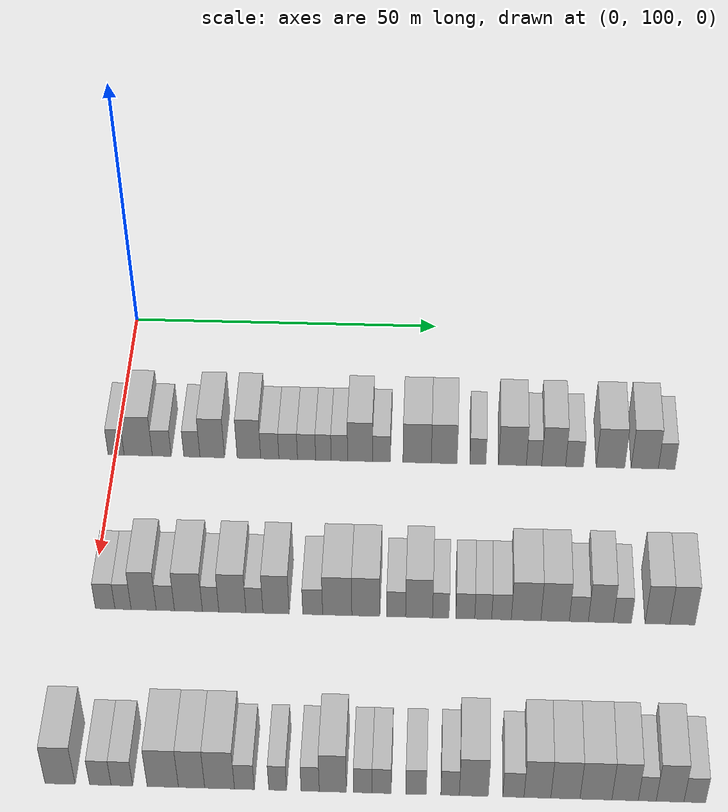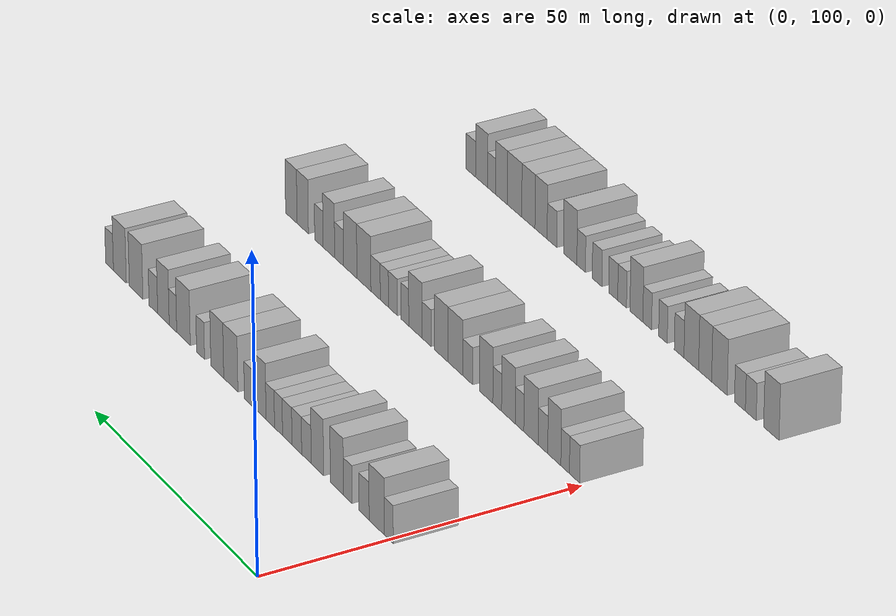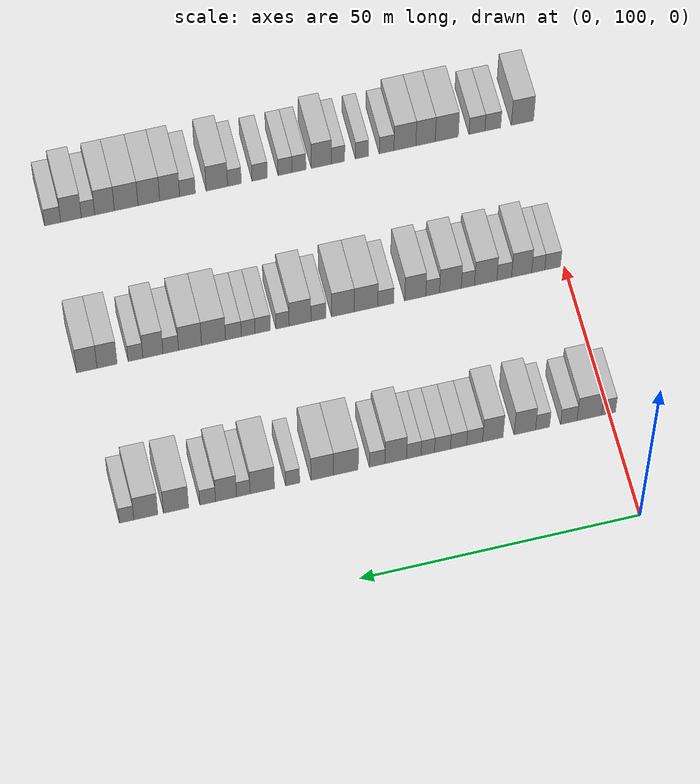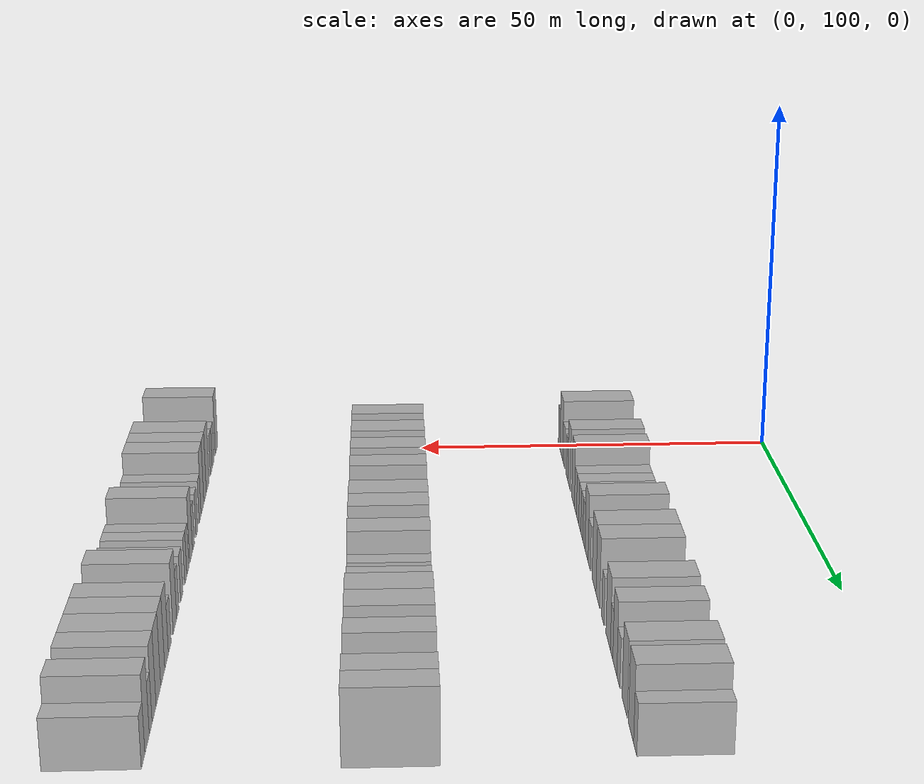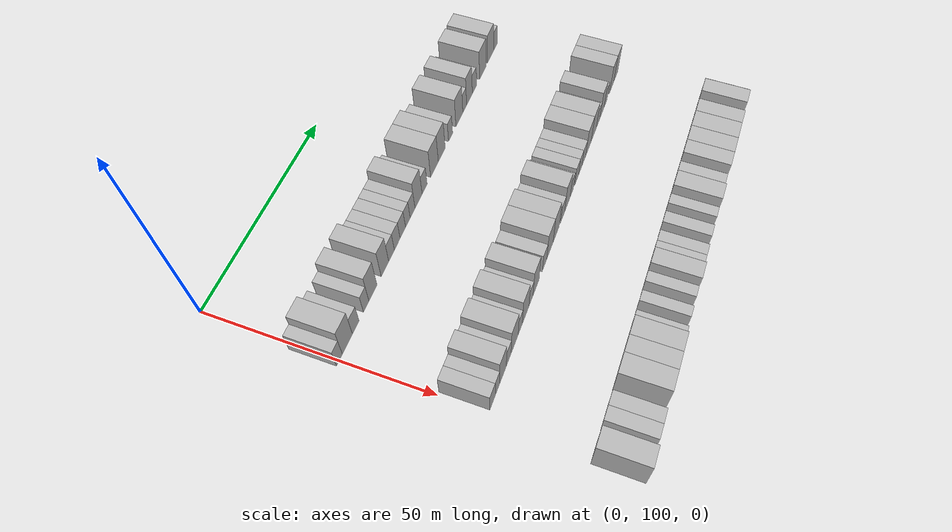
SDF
<sdf version="1.6">
 <world name="default">
  <model name="building_91">
   <static>1</static>
   <pose>25.0000 100.1455 0 0.000000 0.000000 0.000000</pose>
   <link name="link">
    <pose>0 0 3.00 0 0 0</pose>
    <collision name="collision"><geometry><box><size>10.0000 2.5336 6.0000</size></box></geometry></collision>
    <visual name="visual">
     <cast_shadows>0</cast_shadows>
     <geometry><box><size>10.0000 2.5336 6.0000</size></box></geometry>
     <material>
      <script>
       <uri>model://HANNAS_wall/materials/scripts</uri>
       <uri>model://HANNAS_wall/materials/textures</uri>
       <name>vrc/HANNAS_wall</name>
      </script>
     </material>
    </visual>
   </link>
  </model>
  <model name="building_92">
   <static>1</static>
   <pose>25.0000 103.6341 0 0.000000 0.000000 0.000000</pose>
   <link name="link">
    <pose>0 0 4.50 0 0 0</pose>
    <collision name="collision"><geometry><box><size>10.0000 4.4436 9.0000</size></box></geometry></collision>
    <visual name="visual">
     <cast_shadows>0</cast_shadows>
     <geometry><box><size>10.0000 4.4436 9.0000</size></box></geometry>
     <material>
      <script>
       <uri>model://HANNAS_wall/materials/scripts</uri>
       <uri>model://HANNAS_wall/materials/textures</uri>
       <name>vrc/HANNAS_wall</name>
      </script>
     </material>
    </visual>
   </link>
  </model>
  <model name="building_93">
   <static>1</static>
   <pose>25.0000 107.3447 0 0.000000 0.000000 0.000000</pose>
   <link name="link">
    <pose>0 0 3.00 0 0 0</pose>
    <collision name="collision"><geometry><box><size>10.0000 2.9775 6.0000</size></box></geometry></collision>
    <visual name="visual">
     <cast_shadows>0</cast_shadows>
     <geometry><box><size>10.0000 2.9775 6.0000</size></box></geometry>
     <material>
      <script>
       <uri>model://HANNAS_wall/materials/scripts</uri>
       <uri>model://HANNAS_wall/materials/textures</uri>
       <name>vrc/HANNAS_wall</name>
      </script>
     </material>
    </visual>
   </link>
  </model>
  <model name="building_94">
   <static>1</static>
   <pose>25.0000 112.1001 0 0.000000 0.000000 0.000000</pose>
   <link name="link">
    <pose>0 0 3.00 0 0 0</pose>
    <collision name="collision"><geometry><box><size>10.0000 2.5335 6.0000</size></box></geometry></collision>
    <visual name="visual">
     <cast_shadows>0</cast_shadows>
     <geometry><box><size>10.0000 2.5335 6.0000</size></box></geometry>
     <material>
      <script>
       <uri>model://HANNAS_wall/materials/scripts</uri>
       <uri>model://HANNAS_wall/materials/textures</uri>
       <name>vrc/HANNAS_wall</name>
      </script>
     </material>
    </visual>
   </link>
  </model>
  <model name="building_95">
   <static>1</static>
   <pose>25.0000 115.3038 0 0.000000 0.000000 0.000000</pose>
   <link name="link">
    <pose>0 0 4.50 0 0 0</pose>
    <collision name="collision"><geometry><box><size>10.0000 3.8738 9.0000</size></box></geometry></collision>
    <visual name="visual">
     <cast_shadows>0</cast_shadows>
     <geometry><box><size>10.0000 3.8738 9.0000</size></box></geometry>
     <material>
      <script>
       <uri>model://HANNAS_wall/materials/scripts</uri>
       <uri>model://HANNAS_wall/materials/textures</uri>
       <name>vrc/HANNAS_wall</name>
      </script>
     </material>
    </visual>
   </link>
  </model>
  <model name="building_96">
   <static>1</static>
   <pose>25.0000 121.0910 0 0.000000 0.000000 0.000000</pose>
   <link name="link">
    <pose>0 0 4.50 0 0 0</pose>
    <collision name="collision"><geometry><box><size>10.0000 3.7006 9.0000</size></box></geometry></collision>
    <visual name="visual">
     <cast_shadows>0</cast_shadows>
     <geometry><box><size>10.0000 3.7006 9.0000</size></box></geometry>
     <material>
      <script>
       <uri>model://HANNAS_wall/materials/scripts</uri>
       <uri>model://HANNAS_wall/materials/textures</uri>
       <name>vrc/HANNAS_wall</name>
      </script>
     </material>
    </visual>
   </link>
  </model>
  <model name="building_97">
   <static>1</static>
   <pose>25.0000 124.3751 0 0.000000 0.000000 0.000000</pose>
   <link name="link">
    <pose>0 0 3.00 0 0 0</pose>
    <collision name="collision"><geometry><box><size>10.0000 2.8675 6.0000</size></box></geometry></collision>
    <visual name="visual">
     <cast_shadows>0</cast_shadows>
     <geometry><box><size>10.0000 2.8675 6.0000</size></box></geometry>
     <material>
      <script>
       <uri>model://HANNAS_wall/materials/scripts</uri>
       <uri>model://HANNAS_wall/materials/textures</uri>
       <name>vrc/HANNAS_wall</name>
      </script>
     </material>
    </visual>
   </link>
  </model>
  <model name="building_98">
   <static>1</static>
   <pose>25.0000 127.2712 0 0.000000 0.000000 0.000000</pose>
   <link name="link">
    <pose>0 0 3.00 0 0 0</pose>
    <collision name="collision"><geometry><box><size>10.0000 2.9249 6.0000</size></box></geometry></collision>
    <visual name="visual">
     <cast_shadows>0</cast_shadows>
     <geometry><box><size>10.0000 2.9249 6.0000</size></box></geometry>
     <material>
      <script>
       <uri>model://HANNAS_wall/materials/scripts</uri>
       <uri>model://HANNAS_wall/materials/textures</uri>
       <name>vrc/HANNAS_wall</name>
      </script>
     </material>
    </visual>
   </link>
  </model>
  <model name="building_99">
   <static>1</static>
   <pose>25.0000 130.1679 0 0.000000 0.000000 0.000000</pose>
   <link name="link">
    <pose>0 0 3.00 0 0 0</pose>
    <collision name="collision"><geometry><box><size>10.0000 2.8684 6.0000</size></box></geometry></collision>
    <visual name="visual">
     <cast_shadows>0</cast_shadows>
     <geometry><box><size>10.0000 2.8684 6.0000</size></box></geometry>
     <material>
      <script>
       <uri>model://HANNAS_wall/materials/scripts</uri>
       <uri>model://HANNAS_wall/materials/textures</uri>
       <name>vrc/HANNAS_wall</name>
      </script>
     </material>
    </visual>
   </link>
  </model>
  <model name="building_100">
   <static>1</static>
   <pose>25.0000 132.8201 0 0.000000 0.000000 0.000000</pose>
   <link name="link">
    <pose>0 0 3.00 0 0 0</pose>
    <collision name="collision"><geometry><box><size>10.0000 2.4360 6.0000</size></box></geometry></collision>
    <visual name="visual">
     <cast_shadows>0</cast_shadows>
     <geometry><box><size>10.0000 2.4360 6.0000</size></box></geometry>
     <material>
      <script>
       <uri>model://HANNAS_wall/materials/scripts</uri>
       <uri>model://HANNAS_wall/materials/textures</uri>
       <name>vrc/HANNAS_wall</name>
      </script>
     </material>
    </visual>
   </link>
  </model>
  <model name="building_101">
   <static>1</static>
   <pose>25.0000 135.3339 0 0.000000 0.000000 0.000000</pose>
   <link name="link">
    <pose>0 0 3.00 0 0 0</pose>
    <collision name="collision"><geometry><box><size>10.0000 2.5916 6.0000</size></box></geometry></collision>
    <visual name="visual">
     <cast_shadows>0</cast_shadows>
     <geometry><box><size>10.0000 2.5916 6.0000</size></box></geometry>
     <material>
      <script>
       <uri>model://HANNAS_wall/materials/scripts</uri>
       <uri>model://HANNAS_wall/materials/textures</uri>
       <name>vrc/HANNAS_wall</name>
      </script>
     </material>
    </visual>
   </link>
  </model>
  <model name="building_102">
   <static>1</static>
   <pose>25.0000 138.5846 0 0.000000 0.000000 0.000000</pose>
   <link name="link">
    <pose>0 0 4.50 0 0 0</pose>
    <collision name="collision"><geometry><box><size>10.0000 3.9099 9.0000</size></box></geometry></collision>
    <visual name="visual">
     <cast_shadows>0</cast_shadows>
     <geometry><box><size>10.0000 3.9099 9.0000</size></box></geometry>
     <material>
      <script>
       <uri>model://HANNAS_wall/materials/scripts</uri>
       <uri>model://HANNAS_wall/materials/textures</uri>
       <name>vrc/HANNAS_wall</name>
      </script>
     </material>
    </visual>
   </link>
  </model>
  <model name="building_103">
   <static>1</static>
   <pose>25.0000 141.9243 0 0.000000 0.000000 0.000000</pose>
   <link name="link">
    <pose>0 0 3.00 0 0 0</pose>
    <collision name="collision"><geometry><box><size>10.0000 2.7695 6.0000</size></box></geometry></collision>
    <visual name="visual">
     <cast_shadows>0</cast_shadows>
     <geometry><box><size>10.0000 2.7695 6.0000</size></box></geometry>
     <material>
      <script>
       <uri>model://HANNAS_wall/materials/scripts</uri>
       <uri>model://HANNAS_wall/materials/textures</uri>
       <name>vrc/HANNAS_wall</name>
      </script>
     </material>
    </visual>
   </link>
  </model>
  <model name="building_104">
   <static>1</static>
   <pose>25.0000 147.5274 0 0.000000 0.000000 0.000000</pose>
   <link name="link">
    <pose>0 0 4.50 0 0 0</pose>
    <collision name="collision"><geometry><box><size>10.0000 4.4366 9.0000</size></box></geometry></collision>
    <visual name="visual">
     <cast_shadows>0</cast_shadows>
     <geometry><box><size>10.0000 4.4366 9.0000</size></box></geometry>
     <material>
      <script>
       <uri>model://HANNAS_wall/materials/scripts</uri>
       <uri>model://HANNAS_wall/materials/textures</uri>
       <name>vrc/HANNAS_wall</name>
      </script>
     </material>
    </visual>
   </link>
  </model>
  <model name="building_105">
   <static>1</static>
   <pose>25.0000 151.7654 0 0.000000 0.000000 0.000000</pose>
   <link name="link">
    <pose>0 0 4.50 0 0 0</pose>
    <collision name="collision"><geometry><box><size>10.0000 4.0394 9.0000</size></box></geometry></collision>
    <visual name="visual">
     <cast_shadows>0</cast_shadows>
     <geometry><box><size>10.0000 4.0394 9.0000</size></box></geometry>
     <material>
      <script>
       <uri>model://HANNAS_wall/materials/scripts</uri>
       <uri>model://HANNAS_wall/materials/textures</uri>
       <name>vrc/HANNAS_wall</name>
      </script>
     </material>
    </visual>
   </link>
  </model>
  <model name="building_106">
   <static>1</static>
   <pose>25.0000 157.0408 0 0.000000 0.000000 0.000000</pose>
   <link name="link">
    <pose>0 0 3.00 0 0 0</pose>
    <collision name="collision"><geometry><box><size>10.0000 2.5114 6.0000</size></box></geometry></collision>
    <visual name="visual">
     <cast_shadows>0</cast_shadows>
     <geometry><box><size>10.0000 2.5114 6.0000</size></box></geometry>
     <material>
      <script>
       <uri>model://HANNAS_wall/materials/scripts</uri>
       <uri>model://HANNAS_wall/materials/textures</uri>
       <name>vrc/HANNAS_wall</name>
      </script>
     </material>
    </visual>
   </link>
  </model>
  <model name="building_107">
   <static>1</static>
   <pose>25.0000 162.4738 0 0.000000 0.000000 0.000000</pose>
   <link name="link">
    <pose>0 0 4.50 0 0 0</pose>
    <collision name="collision"><geometry><box><size>10.0000 4.3545 9.0000</size></box></geometry></collision>
    <visual name="visual">
     <cast_shadows>0</cast_shadows>
     <geometry><box><size>10.0000 4.3545 9.0000</size></box></geometry>
     <material>
      <script>
       <uri>model://HANNAS_wall/materials/scripts</uri>
       <uri>model://HANNAS_wall/materials/textures</uri>
       <name>vrc/HANNAS_wall</name>
      </script>
     </material>
    </visual>
   </link>
  </model>
  <model name="building_108">
   <static>1</static>
   <pose>25.0000 165.8518 0 0.000000 0.000000 0.000000</pose>
   <link name="link">
    <pose>0 0 3.00 0 0 0</pose>
    <collision name="collision"><geometry><box><size>10.0000 2.4015 6.0000</size></box></geometry></collision>
    <visual name="visual">
     <cast_shadows>0</cast_shadows>
     <geometry><box><size>10.0000 2.4015 6.0000</size></box></geometry>
     <material>
      <script>
       <uri>model://HANNAS_wall/materials/scripts</uri>
       <uri>model://HANNAS_wall/materials/textures</uri>
       <name>vrc/HANNAS_wall</name>
      </script>
     </material>
    </visual>
   </link>
  </model>
  <model name="building_109">
   <static>1</static>
   <pose>25.0000 168.9184 0 0.000000 0.000000 0.000000</pose>
   <link name="link">
    <pose>0 0 4.50 0 0 0</pose>
    <collision name="collision"><geometry><box><size>10.0000 3.7316 9.0000</size></box></geometry></collision>
    <visual name="visual">
     <cast_shadows>0</cast_shadows>
     <geometry><box><size>10.0000 3.7316 9.0000</size></box></geometry>
     <material>
      <script>
       <uri>model://HANNAS_wall/materials/scripts</uri>
       <uri>model://HANNAS_wall/materials/textures</uri>
       <name>vrc/HANNAS_wall</name>
      </script>
     </material>
    </visual>
   </link>
  </model>
  <model name="building_110">
   <static>1</static>
   <pose>25.0000 172.1826 0 0.000000 0.000000 0.000000</pose>
   <link name="link">
    <pose>0 0 3.00 0 0 0</pose>
    <collision name="collision"><geometry><box><size>10.0000 2.7968 6.0000</size></box></geometry></collision>
    <visual name="visual">
     <cast_shadows>0</cast_shadows>
     <geometry><box><size>10.0000 2.7968 6.0000</size></box></geometry>
     <material>
      <script>
       <uri>model://HANNAS_wall/materials/scripts</uri>
       <uri>model://HANNAS_wall/materials/textures</uri>
       <name>vrc/HANNAS_wall</name>
      </script>
     </material>
    </visual>
   </link>
  </model>
  <model name="building_111">
   <static>1</static>
   <pose>25.0000 177.8100 0 0.000000 0.000000 0.000000</pose>
   <link name="link">
    <pose>0 0 4.50 0 0 0</pose>
    <collision name="collision"><geometry><box><size>10.0000 4.4580 9.0000</size></box></geometry></collision>
    <visual name="visual">
     <cast_shadows>0</cast_shadows>
     <geometry><box><size>10.0000 4.4580 9.0000</size></box></geometry>
     <material>
      <script>
       <uri>model://HANNAS_wall/materials/scripts</uri>
       <uri>model://HANNAS_wall/materials/textures</uri>
       <name>vrc/HANNAS_wall</name>
      </script>
     </material>
    </visual>
   </link>
  </model>
  <model name="building_112">
   <static>1</static>
   <pose>25.0000 183.1635 0 0.000000 0.000000 0.000000</pose>
   <link name="link">
    <pose>0 0 4.50 0 0 0</pose>
    <collision name="collision"><geometry><box><size>10.0000 4.2489 9.0000</size></box></geometry></collision>
    <visual name="visual">
     <cast_shadows>0</cast_shadows>
     <geometry><box><size>10.0000 4.2489 9.0000</size></box></geometry>
     <material>
      <script>
       <uri>model://HANNAS_wall/materials/scripts</uri>
       <uri>model://HANNAS_wall/materials/textures</uri>
       <name>vrc/HANNAS_wall</name>
      </script>
     </material>
    </visual>
   </link>
  </model>
  <model name="building_113">
   <static>1</static>
   <pose>25.0000 186.5797 0 0.000000 0.000000 0.000000</pose>
   <link name="link">
    <pose>0 0 3.00 0 0 0</pose>
    <collision name="collision"><geometry><box><size>10.0000 2.5835 6.0000</size></box></geometry></collision>
    <visual name="visual">
     <cast_shadows>0</cast_shadows>
     <geometry><box><size>10.0000 2.5835 6.0000</size></box></geometry>
     <material>
      <script>
       <uri>model://HANNAS_wall/materials/scripts</uri>
       <uri>model://HANNAS_wall/materials/textures</uri>
       <name>vrc/HANNAS_wall</name>
      </script>
     </material>
    </visual>
   </link>
  </model>
  <model name="building_234">
   <static>1</static>
   <pose>55.0000 102.1491 0 0.000000 0.000000 0.000000</pose>
   <link name="link">
    <pose>0 0 3.00 0 0 0</pose>
    <collision name="collision"><geometry><box><size>10.0000 2.8882 6.0000</size></box></geometry></collision>
    <visual name="visual">
     <cast_shadows>0</cast_shadows>
     <geometry><box><size>10.0000 2.8882 6.0000</size></box></geometry>
     <material>
      <script>
       <uri>model://HANNAS_wall/materials/scripts</uri>
       <uri>model://HANNAS_wall/materials/textures</uri>
       <name>vrc/HANNAS_wall</name>
      </script>
     </material>
    </visual>
   </link>
  </model>
  <model name="building_235">
   <static>1</static>
   <pose>55.0000 104.7938 0 0.000000 0.000000 0.000000</pose>
   <link name="link">
    <pose>0 0 3.00 0 0 0</pose>
    <collision name="collision"><geometry><box><size>10.0000 2.4011 6.0000</size></box></geometry></collision>
    <visual name="visual">
     <cast_shadows>0</cast_shadows>
     <geometry><box><size>10.0000 2.4011 6.0000</size></box></geometry>
     <material>
      <script>
       <uri>model://HANNAS_wall/materials/scripts</uri>
       <uri>model://HANNAS_wall/materials/textures</uri>
       <name>vrc/HANNAS_wall</name>
      </script>
     </material>
    </visual>
   </link>
  </model>
  <model name="building_236">
   <static>1</static>
   <pose>55.0000 107.8491 0 0.000000 0.000000 0.000000</pose>
   <link name="link">
    <pose>0 0 4.50 0 0 0</pose>
    <collision name="collision"><geometry><box><size>10.0000 3.7096 9.0000</size></box></geometry></collision>
    <visual name="visual">
     <cast_shadows>0</cast_shadows>
     <geometry><box><size>10.0000 3.7096 9.0000</size></box></geometry>
     <material>
      <script>
       <uri>model://HANNAS_wall/materials/scripts</uri>
       <uri>model://HANNAS_wall/materials/textures</uri>
       <name>vrc/HANNAS_wall</name>
      </script>
     </material>
    </visual>
   </link>
  </model>
  <model name="building_237">
   <static>1</static>
   <pose>55.0000 111.0541 0 0.000000 0.000000 0.000000</pose>
   <link name="link">
    <pose>0 0 3.00 0 0 0</pose>
    <collision name="collision"><geometry><box><size>10.0000 2.7003 6.0000</size></box></geometry></collision>
    <visual name="visual">
     <cast_shadows>0</cast_shadows>
     <geometry><box><size>10.0000 2.7003 6.0000</size></box></geometry>
     <material>
      <script>
       <uri>model://HANNAS_wall/materials/scripts</uri>
       <uri>model://HANNAS_wall/materials/textures</uri>
       <name>vrc/HANNAS_wall</name>
      </script>
     </material>
    </visual>
   </link>
  </model>
  <model name="building_238">
   <static>1</static>
   <pose>55.0000 114.4701 0 0.000000 0.000000 0.000000</pose>
   <link name="link">
    <pose>0 0 4.50 0 0 0</pose>
    <collision name="collision"><geometry><box><size>10.0000 4.1317 9.0000</size></box></geometry></collision>
    <visual name="visual">
     <cast_shadows>0</cast_shadows>
     <geometry><box><size>10.0000 4.1317 9.0000</size></box></geometry>
     <material>
      <script>
       <uri>model://HANNAS_wall/materials/scripts</uri>
       <uri>model://HANNAS_wall/materials/textures</uri>
       <name>vrc/HANNAS_wall</name>
      </script>
     </material>
    </visual>
   </link>
  </model>
  <model name="building_239">
   <static>1</static>
   <pose>55.0000 117.7493 0 0.000000 0.000000 0.000000</pose>
   <link name="link">
    <pose>0 0 3.00 0 0 0</pose>
    <collision name="collision"><geometry><box><size>10.0000 2.4267 6.0000</size></box></geometry></collision>
    <visual name="visual">
     <cast_shadows>0</cast_shadows>
     <geometry><box><size>10.0000 2.4267 6.0000</size></box></geometry>
     <material>
      <script>
       <uri>model://HANNAS_wall/materials/scripts</uri>
       <uri>model://HANNAS_wall/materials/textures</uri>
       <name>vrc/HANNAS_wall</name>
      </script>
     </material>
    </visual>
   </link>
  </model>
  <model name="building_240">
   <static>1</static>
   <pose>55.0000 120.9601 0 0.000000 0.000000 0.000000</pose>
   <link name="link">
    <pose>0 0 4.50 0 0 0</pose>
    <collision name="collision"><geometry><box><size>10.0000 3.9950 9.0000</size></box></geometry></collision>
    <visual name="visual">
     <cast_shadows>0</cast_shadows>
     <geometry><box><size>10.0000 3.9950 9.0000</size></box></geometry>
     <material>
      <script>
       <uri>model://HANNAS_wall/materials/scripts</uri>
       <uri>model://HANNAS_wall/materials/textures</uri>
       <name>vrc/HANNAS_wall</name>
      </script>
     </material>
    </visual>
   </link>
  </model>
  <model name="building_241">
   <static>1</static>
   <pose>55.0000 124.2141 0 0.000000 0.000000 0.000000</pose>
   <link name="link">
    <pose>0 0 3.00 0 0 0</pose>
    <collision name="collision"><geometry><box><size>10.0000 2.5129 6.0000</size></box></geometry></collision>
    <visual name="visual">
     <cast_shadows>0</cast_shadows>
     <geometry><box><size>10.0000 2.5129 6.0000</size></box></geometry>
     <material>
      <script>
       <uri>model://HANNAS_wall/materials/scripts</uri>
       <uri>model://HANNAS_wall/materials/textures</uri>
       <name>vrc/HANNAS_wall</name>
      </script>
     </material>
    </visual>
   </link>
  </model>
  <model name="building_242">
   <static>1</static>
   <pose>55.0000 127.4110 0 0.000000 0.000000 0.000000</pose>
   <link name="link">
    <pose>0 0 4.50 0 0 0</pose>
    <collision name="collision"><geometry><box><size>10.0000 3.8811 9.0000</size></box></geometry></collision>
    <visual name="visual">
     <cast_shadows>0</cast_shadows>
     <geometry><box><size>10.0000 3.8811 9.0000</size></box></geometry>
     <material>
      <script>
       <uri>model://HANNAS_wall/materials/scripts</uri>
       <uri>model://HANNAS_wall/materials/textures</uri>
       <name>vrc/HANNAS_wall</name>
      </script>
     </material>
    </visual>
   </link>
  </model>
  <model name="building_243">
   <static>1</static>
   <pose>55.0000 132.8151 0 0.000000 0.000000 0.000000</pose>
   <link name="link">
    <pose>0 0 3.00 0 0 0</pose>
    <collision name="collision"><geometry><box><size>10.0000 2.9270 6.0000</size></box></geometry></collision>
    <visual name="visual">
     <cast_shadows>0</cast_shadows>
     <geometry><box><size>10.0000 2.9270 6.0000</size></box></geometry>
     <material>
      <script>
       <uri>model://HANNAS_wall/materials/scripts</uri>
       <uri>model://HANNAS_wall/materials/textures</uri>
       <name>vrc/HANNAS_wall</name>
      </script>
     </material>
    </visual>
   </link>
  </model>
  <model name="building_244">
   <static>1</static>
   <pose>55.0000 136.4293 0 0.000000 0.000000 0.000000</pose>
   <link name="link">
    <pose>0 0 4.50 0 0 0</pose>
    <collision name="collision"><geometry><box><size>10.0000 4.3014 9.0000</size></box></geometry></collision>
    <visual name="visual">
     <cast_shadows>0</cast_shadows>
     <geometry><box><size>10.0000 4.3014 9.0000</size></box></geometry>
     <material>
      <script>
       <uri>model://HANNAS_wall/materials/scripts</uri>
       <uri>model://HANNAS_wall/materials/textures</uri>
       <name>vrc/HANNAS_wall</name>
      </script>
     </material>
    </visual>
   </link>
  </model>
  <model name="building_245">
   <static>1</static>
   <pose>55.0000 140.6435 0 0.000000 0.000000 0.000000</pose>
   <link name="link">
    <pose>0 0 4.50 0 0 0</pose>
    <collision name="collision"><geometry><box><size>10.0000 4.1271 9.0000</size></box></geometry></collision>
    <visual name="visual">
     <cast_shadows>0</cast_shadows>
     <geometry><box><size>10.0000 4.1271 9.0000</size></box></geometry>
     <material>
      <script>
       <uri>model://HANNAS_wall/materials/scripts</uri>
       <uri>model://HANNAS_wall/materials/textures</uri>
       <name>vrc/HANNAS_wall</name>
      </script>
     </material>
    </visual>
   </link>
  </model>
  <model name="building_246">
   <static>1</static>
   <pose>55.0000 145.0985 0 0.000000 0.000000 0.000000</pose>
   <link name="link">
    <pose>0 0 3.00 0 0 0</pose>
    <collision name="collision"><geometry><box><size>10.0000 2.7829 6.0000</size></box></geometry></collision>
    <visual name="visual">
     <cast_shadows>0</cast_shadows>
     <geometry><box><size>10.0000 2.7829 6.0000</size></box></geometry>
     <material>
      <script>
       <uri>model://HANNAS_wall/materials/scripts</uri>
       <uri>model://HANNAS_wall/materials/textures</uri>
       <name>vrc/HANNAS_wall</name>
      </script>
     </material>
    </visual>
   </link>
  </model>
  <model name="building_247">
   <static>1</static>
   <pose>55.0000 148.4696 0 0.000000 0.000000 0.000000</pose>
   <link name="link">
    <pose>0 0 4.50 0 0 0</pose>
    <collision name="collision"><geometry><box><size>10.0000 3.9592 9.0000</size></box></geometry></collision>
    <visual name="visual">
     <cast_shadows>0</cast_shadows>
     <geometry><box><size>10.0000 3.9592 9.0000</size></box></geometry>
     <material>
      <script>
       <uri>model://HANNAS_wall/materials/scripts</uri>
       <uri>model://HANNAS_wall/materials/textures</uri>
       <name>vrc/HANNAS_wall</name>
      </script>
     </material>
    </visual>
   </link>
  </model>
  <model name="building_248">
   <static>1</static>
   <pose>55.0000 151.6559 0 0.000000 0.000000 0.000000</pose>
   <link name="link">
    <pose>0 0 3.00 0 0 0</pose>
    <collision name="collision"><geometry><box><size>10.0000 2.4135 6.0000</size></box></geometry></collision>
    <visual name="visual">
     <cast_shadows>0</cast_shadows>
     <geometry><box><size>10.0000 2.4135 6.0000</size></box></geometry>
     <material>
      <script>
       <uri>model://HANNAS_wall/materials/scripts</uri>
       <uri>model://HANNAS_wall/materials/textures</uri>
       <name>vrc/HANNAS_wall</name>
      </script>
     </material>
    </visual>
   </link>
  </model>
  <model name="building_249">
   <static>1</static>
   <pose>55.0000 155.2542 0 0.000000 0.000000 0.000000</pose>
   <link name="link">
    <pose>0 0 3.00 0 0 0</pose>
    <collision name="collision"><geometry><box><size>10.0000 2.7830 6.0000</size></box></geometry></collision>
    <visual name="visual">
     <cast_shadows>0</cast_shadows>
     <geometry><box><size>10.0000 2.7830 6.0000</size></box></geometry>
     <material>
      <script>
       <uri>model://HANNAS_wall/materials/scripts</uri>
       <uri>model://HANNAS_wall/materials/textures</uri>
       <name>vrc/HANNAS_wall</name>
      </script>
     </material>
    </visual>
   </link>
  </model>
  <model name="building_250">
   <static>1</static>
   <pose>55.0000 157.8902 0 0.000000 0.000000 0.000000</pose>
   <link name="link">
    <pose>0 0 3.00 0 0 0</pose>
    <collision name="collision"><geometry><box><size>10.0000 2.4891 6.0000</size></box></geometry></collision>
    <visual name="visual">
     <cast_shadows>0</cast_shadows>
     <geometry><box><size>10.0000 2.4891 6.0000</size></box></geometry>
     <material>
      <script>
       <uri>model://HANNAS_wall/materials/scripts</uri>
       <uri>model://HANNAS_wall/materials/textures</uri>
       <name>vrc/HANNAS_wall</name>
      </script>
     </material>
    </visual>
   </link>
  </model>
  <model name="building_251">
   <static>1</static>
   <pose>55.0000 160.5770 0 0.000000 0.000000 0.000000</pose>
   <link name="link">
    <pose>0 0 3.00 0 0 0</pose>
    <collision name="collision"><geometry><box><size>10.0000 2.8846 6.0000</size></box></geometry></collision>
    <visual name="visual">
     <cast_shadows>0</cast_shadows>
     <geometry><box><size>10.0000 2.8846 6.0000</size></box></geometry>
     <material>
      <script>
       <uri>model://HANNAS_wall/materials/scripts</uri>
       <uri>model://HANNAS_wall/materials/textures</uri>
       <name>vrc/HANNAS_wall</name>
      </script>
     </material>
    </visual>
   </link>
  </model>
  <model name="building_252">
   <static>1</static>
   <pose>55.0000 164.1878 0 0.000000 0.000000 0.000000</pose>
   <link name="link">
    <pose>0 0 4.50 0 0 0</pose>
    <collision name="collision"><geometry><box><size>10.0000 4.3368 9.0000</size></box></geometry></collision>
    <visual name="visual">
     <cast_shadows>0</cast_shadows>
     <geometry><box><size>10.0000 4.3368 9.0000</size></box></geometry>
     <material>
      <script>
       <uri>model://HANNAS_wall/materials/scripts</uri>
       <uri>model://HANNAS_wall/materials/textures</uri>
       <name>vrc/HANNAS_wall</name>
      </script>
     </material>
    </visual>
   </link>
  </model>
  <model name="building_253">
   <static>1</static>
   <pose>55.0000 168.4413 0 0.000000 0.000000 0.000000</pose>
   <link name="link">
    <pose>0 0 4.50 0 0 0</pose>
    <collision name="collision"><geometry><box><size>10.0000 4.1702 9.0000</size></box></geometry></collision>
    <visual name="visual">
     <cast_shadows>0</cast_shadows>
     <geometry><box><size>10.0000 4.1702 9.0000</size></box></geometry>
     <material>
      <script>
       <uri>model://HANNAS_wall/materials/scripts</uri>
       <uri>model://HANNAS_wall/materials/textures</uri>
       <name>vrc/HANNAS_wall</name>
      </script>
     </material>
    </visual>
   </link>
  </model>
  <model name="building_254">
   <static>1</static>
   <pose>55.0000 171.9240 0 0.000000 0.000000 0.000000</pose>
   <link name="link">
    <pose>0 0 3.00 0 0 0</pose>
    <collision name="collision"><geometry><box><size>10.0000 2.7953 6.0000</size></box></geometry></collision>
    <visual name="visual">
     <cast_shadows>0</cast_shadows>
     <geometry><box><size>10.0000 2.7953 6.0000</size></box></geometry>
     <material>
      <script>
       <uri>model://HANNAS_wall/materials/scripts</uri>
       <uri>model://HANNAS_wall/materials/textures</uri>
       <name>vrc/HANNAS_wall</name>
      </script>
     </material>
    </visual>
   </link>
  </model>
  <model name="building_255">
   <static>1</static>
   <pose>55.0000 175.1478 0 0.000000 0.000000 0.000000</pose>
   <link name="link">
    <pose>0 0 4.50 0 0 0</pose>
    <collision name="collision"><geometry><box><size>10.0000 3.6523 9.0000</size></box></geometry></collision>
    <visual name="visual">
     <cast_shadows>0</cast_shadows>
     <geometry><box><size>10.0000 3.6523 9.0000</size></box></geometry>
     <material>
      <script>
       <uri>model://HANNAS_wall/materials/scripts</uri>
       <uri>model://HANNAS_wall/materials/textures</uri>
       <name>vrc/HANNAS_wall</name>
      </script>
     </material>
    </visual>
   </link>
  </model>
  <model name="building_256">
   <static>1</static>
   <pose>55.0000 178.3006 0 0.000000 0.000000 0.000000</pose>
   <link name="link">
    <pose>0 0 3.00 0 0 0</pose>
    <collision name="collision"><geometry><box><size>10.0000 2.6533 6.0000</size></box></geometry></collision>
    <visual name="visual">
     <cast_shadows>0</cast_shadows>
     <geometry><box><size>10.0000 2.6533 6.0000</size></box></geometry>
     <material>
      <script>
       <uri>model://HANNAS_wall/materials/scripts</uri>
       <uri>model://HANNAS_wall/materials/textures</uri>
       <name>vrc/HANNAS_wall</name>
      </script>
     </material>
    </visual>
   </link>
  </model>
  <model name="building_257">
   <static>1</static>
   <pose>55.0000 183.4410 0 0.000000 0.000000 0.000000</pose>
   <link name="link">
    <pose>0 0 4.50 0 0 0</pose>
    <collision name="collision"><geometry><box><size>10.0000 3.6274 9.0000</size></box></geometry></collision>
    <visual name="visual">
     <cast_shadows>0</cast_shadows>
     <geometry><box><size>10.0000 3.6274 9.0000</size></box></geometry>
     <material>
      <script>
       <uri>model://HANNAS_wall/materials/scripts</uri>
       <uri>model://HANNAS_wall/materials/textures</uri>
       <name>vrc/HANNAS_wall</name>
      </script>
     </material>
    </visual>
   </link>
  </model>
  <model name="building_258">
   <static>1</static>
   <pose>55.0000 187.0954 0 0.000000 0.000000 0.000000</pose>
   <link name="link">
    <pose>0 0 4.50 0 0 0</pose>
    <collision name="collision"><geometry><box><size>10.0000 3.6813 9.0000</size></box></geometry></collision>
    <visual name="visual">
     <cast_shadows>0</cast_shadows>
     <geometry><box><size>10.0000 3.6813 9.0000</size></box></geometry>
     <material>
      <script>
       <uri>model://HANNAS_wall/materials/scripts</uri>
       <uri>model://HANNAS_wall/materials/textures</uri>
       <name>vrc/HANNAS_wall</name>
      </script>
     </material>
    </visual>
   </link>
  </model>
  <model name="building_378">
   <static>1</static>
   <pose>85.0000 99.6586 0 0.000000 0.000000 0.000000</pose>
   <link name="link">
    <pose>0 0 4.50 0 0 0</pose>
    <collision name="collision"><geometry><box><size>10.0000 4.1688 9.0000</size></box></geometry></collision>
    <visual name="visual">
     <cast_shadows>0</cast_shadows>
     <geometry><box><size>10.0000 4.1688 9.0000</size></box></geometry>
     <material>
      <script>
       <uri>model://HANNAS_wall/materials/scripts</uri>
       <uri>model://HANNAS_wall/materials/textures</uri>
       <name>vrc/HANNAS_wall</name>
      </script>
     </material>
    </visual>
   </link>
  </model>
  <model name="building_379">
   <static>1</static>
   <pose>85.0000 105.2253 0 0.000000 0.000000 0.000000</pose>
   <link name="link">
    <pose>0 0 3.00 0 0 0</pose>
    <collision name="collision"><geometry><box><size>10.0000 2.9647 6.0000</size></box></geometry></collision>
    <visual name="visual">
     <cast_shadows>0</cast_shadows>
     <geometry><box><size>10.0000 2.9647 6.0000</size></box></geometry>
     <material>
      <script>
       <uri>model://HANNAS_wall/materials/scripts</uri>
       <uri>model://HANNAS_wall/materials/textures</uri>
       <name>vrc/HANNAS_wall</name>
      </script>
     </material>
    </visual>
   </link>
  </model>
  <model name="building_380">
   <static>1</static>
   <pose>85.0000 108.2008 0 0.000000 0.000000 0.000000</pose>
   <link name="link">
    <pose>0 0 3.00 0 0 0</pose>
    <collision name="collision"><geometry><box><size>10.0000 2.9862 6.0000</size></box></geometry></collision>
    <visual name="visual">
     <cast_shadows>0</cast_shadows>
     <geometry><box><size>10.0000 2.9862 6.0000</size></box></geometry>
     <material>
      <script>
       <uri>model://HANNAS_wall/materials/scripts</uri>
       <uri>model://HANNAS_wall/materials/textures</uri>
       <name>vrc/HANNAS_wall</name>
      </script>
     </material>
    </visual>
   </link>
  </model>
  <model name="building_381">
   <static>1</static>
   <pose>85.0000 113.8516 0 0.000000 0.000000 0.000000</pose>
   <link name="link">
    <pose>0 0 4.50 0 0 0</pose>
    <collision name="collision"><geometry><box><size>10.0000 4.3155 9.0000</size></box></geometry></collision>
    <visual name="visual">
     <cast_shadows>0</cast_shadows>
     <geometry><box><size>10.0000 4.3155 9.0000</size></box></geometry>
     <material>
      <script>
       <uri>model://HANNAS_wall/materials/scripts</uri>
       <uri>model://HANNAS_wall/materials/textures</uri>
       <name>vrc/HANNAS_wall</name>
      </script>
     </material>
    </visual>
   </link>
  </model>
  <model name="building_382">
   <static>1</static>
   <pose>85.0000 117.8206 0 0.000000 0.000000 0.000000</pose>
   <link name="link">
    <pose>0 0 4.50 0 0 0</pose>
    <collision name="collision"><geometry><box><size>10.0000 3.6225 9.0000</size></box></geometry></collision>
    <visual name="visual">
     <cast_shadows>0</cast_shadows>
     <geometry><box><size>10.0000 3.6225 9.0000</size></box></geometry>
     <material>
      <script>
       <uri>model://HANNAS_wall/materials/scripts</uri>
       <uri>model://HANNAS_wall/materials/textures</uri>
       <name>vrc/HANNAS_wall</name>
      </script>
     </material>
    </visual>
   </link>
  </model>
  <model name="building_383">
   <static>1</static>
   <pose>85.0000 121.6824 0 0.000000 0.000000 0.000000</pose>
   <link name="link">
    <pose>0 0 4.50 0 0 0</pose>
    <collision name="collision"><geometry><box><size>10.0000 4.1011 9.0000</size></box></geometry></collision>
    <visual name="visual">
     <cast_shadows>0</cast_shadows>
     <geometry><box><size>10.0000 4.1011 9.0000</size></box></geometry>
     <material>
      <script>
       <uri>model://HANNAS_wall/materials/scripts</uri>
       <uri>model://HANNAS_wall/materials/textures</uri>
       <name>vrc/HANNAS_wall</name>
      </script>
     </material>
    </visual>
   </link>
  </model>
  <model name="building_384">
   <static>1</static>
   <pose>85.0000 125.0982 0 0.000000 0.000000 0.000000</pose>
   <link name="link">
    <pose>0 0 3.00 0 0 0</pose>
    <collision name="collision"><geometry><box><size>10.0000 2.7305 6.0000</size></box></geometry></collision>
    <visual name="visual">
     <cast_shadows>0</cast_shadows>
     <geometry><box><size>10.0000 2.7305 6.0000</size></box></geometry>
     <material>
      <script>
       <uri>model://HANNAS_wall/materials/scripts</uri>
       <uri>model://HANNAS_wall/materials/textures</uri>
       <name>vrc/HANNAS_wall</name>
      </script>
     </material>
    </visual>
   </link>
  </model>
  <model name="building_385">
   <static>1</static>
   <pose>85.0000 129.6860 0 0.000000 0.000000 0.000000</pose>
   <link name="link">
    <pose>0 0 3.00 0 0 0</pose>
    <collision name="collision"><geometry><box><size>10.0000 2.4450 6.0000</size></box></geometry></collision>
    <visual name="visual">
     <cast_shadows>0</cast_shadows>
     <geometry><box><size>10.0000 2.4450 6.0000</size></box></geometry>
     <material>
      <script>
       <uri>model://HANNAS_wall/materials/scripts</uri>
       <uri>model://HANNAS_wall/materials/textures</uri>
       <name>vrc/HANNAS_wall</name>
      </script>
     </material>
    </visual>
   </link>
  </model>
  <model name="building_386">
   <static>1</static>
   <pose>85.0000 134.1577 0 0.000000 0.000000 0.000000</pose>
   <link name="link">
    <pose>0 0 3.00 0 0 0</pose>
    <collision name="collision"><geometry><box><size>10.0000 2.4985 6.0000</size></box></geometry></collision>
    <visual name="visual">
     <cast_shadows>0</cast_shadows>
     <geometry><box><size>10.0000 2.4985 6.0000</size></box></geometry>
     <material>
      <script>
       <uri>model://HANNAS_wall/materials/scripts</uri>
       <uri>model://HANNAS_wall/materials/textures</uri>
       <name>vrc/HANNAS_wall</name>
      </script>
     </material>
    </visual>
   </link>
  </model>
  <model name="building_387">
   <static>1</static>
   <pose>85.0000 137.2644 0 0.000000 0.000000 0.000000</pose>
   <link name="link">
    <pose>0 0 4.50 0 0 0</pose>
    <collision name="collision"><geometry><box><size>10.0000 3.7149 9.0000</size></box></geometry></collision>
    <visual name="visual">
     <cast_shadows>0</cast_shadows>
     <geometry><box><size>10.0000 3.7149 9.0000</size></box></geometry>
     <material>
      <script>
       <uri>model://HANNAS_wall/materials/scripts</uri>
       <uri>model://HANNAS_wall/materials/textures</uri>
       <name>vrc/HANNAS_wall</name>
      </script>
     </material>
    </visual>
   </link>
  </model>
  <model name="building_388">
   <static>1</static>
   <pose>85.0000 141.3957 0 0.000000 0.000000 0.000000</pose>
   <link name="link">
    <pose>0 0 3.00 0 0 0</pose>
    <collision name="collision"><geometry><box><size>10.0000 2.5477 6.0000</size></box></geometry></collision>
    <visual name="visual">
     <cast_shadows>0</cast_shadows>
     <geometry><box><size>10.0000 2.5477 6.0000</size></box></geometry>
     <material>
      <script>
       <uri>model://HANNAS_wall/materials/scripts</uri>
       <uri>model://HANNAS_wall/materials/textures</uri>
       <name>vrc/HANNAS_wall</name>
      </script>
     </material>
    </visual>
   </link>
  </model>
  <model name="building_389">
   <static>1</static>
   <pose>85.0000 143.9733 0 0.000000 0.000000 0.000000</pose>
   <link name="link">
    <pose>0 0 3.00 0 0 0</pose>
    <collision name="collision"><geometry><box><size>10.0000 2.6075 6.0000</size></box></geometry></collision>
    <visual name="visual">
     <cast_shadows>0</cast_shadows>
     <geometry><box><size>10.0000 2.6075 6.0000</size></box></geometry>
     <material>
      <script>
       <uri>model://HANNAS_wall/materials/scripts</uri>
       <uri>model://HANNAS_wall/materials/textures</uri>
       <name>vrc/HANNAS_wall</name>
      </script>
     </material>
    </visual>
   </link>
  </model>
  <model name="building_390">
   <static>1</static>
   <pose>85.0000 148.6871 0 0.000000 0.000000 0.000000</pose>
   <link name="link">
    <pose>0 0 3.00 0 0 0</pose>
    <collision name="collision"><geometry><box><size>10.0000 2.8201 6.0000</size></box></geometry></collision>
    <visual name="visual">
     <cast_shadows>0</cast_shadows>
     <geometry><box><size>10.0000 2.8201 6.0000</size></box></geometry>
     <material>
      <script>
       <uri>model://HANNAS_wall/materials/scripts</uri>
       <uri>model://HANNAS_wall/materials/textures</uri>
       <name>vrc/HANNAS_wall</name>
      </script>
     </material>
    </visual>
   </link>
  </model>
  <model name="building_391">
   <static>1</static>
   <pose>85.0000 153.3637 0 0.000000 0.000000 0.000000</pose>
   <link name="link">
    <pose>0 0 3.00 0 0 0</pose>
    <collision name="collision"><geometry><box><size>10.0000 2.5331 6.0000</size></box></geometry></collision>
    <visual name="visual">
     <cast_shadows>0</cast_shadows>
     <geometry><box><size>10.0000 2.5331 6.0000</size></box></geometry>
     <material>
      <script>
       <uri>model://HANNAS_wall/materials/scripts</uri>
       <uri>model://HANNAS_wall/materials/textures</uri>
       <name>vrc/HANNAS_wall</name>
      </script>
     </material>
    </visual>
   </link>
  </model>
  <model name="building_392">
   <static>1</static>
   <pose>85.0000 156.6120 0 0.000000 0.000000 0.000000</pose>
   <link name="link">
    <pose>0 0 4.50 0 0 0</pose>
    <collision name="collision"><geometry><box><size>10.0000 3.9634 9.0000</size></box></geometry></collision>
    <visual name="visual">
     <cast_shadows>0</cast_shadows>
     <geometry><box><size>10.0000 3.9634 9.0000</size></box></geometry>
     <material>
      <script>
       <uri>model://HANNAS_wall/materials/scripts</uri>
       <uri>model://HANNAS_wall/materials/textures</uri>
       <name>vrc/HANNAS_wall</name>
      </script>
     </material>
    </visual>
   </link>
  </model>
  <model name="building_393">
   <static>1</static>
   <pose>85.0000 162.0418 0 0.000000 0.000000 0.000000</pose>
   <link name="link">
    <pose>0 0 3.00 0 0 0</pose>
    <collision name="collision"><geometry><box><size>10.0000 2.8962 6.0000</size></box></geometry></collision>
    <visual name="visual">
     <cast_shadows>0</cast_shadows>
     <geometry><box><size>10.0000 2.8962 6.0000</size></box></geometry>
     <material>
      <script>
       <uri>model://HANNAS_wall/materials/scripts</uri>
       <uri>model://HANNAS_wall/materials/textures</uri>
       <name>vrc/HANNAS_wall</name>
      </script>
     </material>
    </visual>
   </link>
  </model>
  <model name="building_394">
   <static>1</static>
   <pose>85.0000 165.3252 0 0.000000 0.000000 0.000000</pose>
   <link name="link">
    <pose>0 0 4.50 0 0 0</pose>
    <collision name="collision"><geometry><box><size>10.0000 3.6705 9.0000</size></box></geometry></collision>
    <visual name="visual">
     <cast_shadows>0</cast_shadows>
     <geometry><box><size>10.0000 3.6705 9.0000</size></box></geometry>
     <material>
      <script>
       <uri>model://HANNAS_wall/materials/scripts</uri>
       <uri>model://HANNAS_wall/materials/textures</uri>
       <name>vrc/HANNAS_wall</name>
      </script>
     </material>
    </visual>
   </link>
  </model>
  <model name="building_395">
   <static>1</static>
   <pose>85.0000 169.1596 0 0.000000 0.000000 0.000000</pose>
   <link name="link">
    <pose>0 0 4.50 0 0 0</pose>
    <collision name="collision"><geometry><box><size>10.0000 3.9982 9.0000</size></box></geometry></collision>
    <visual name="visual">
     <cast_shadows>0</cast_shadows>
     <geometry><box><size>10.0000 3.9982 9.0000</size></box></geometry>
     <material>
      <script>
       <uri>model://HANNAS_wall/materials/scripts</uri>
       <uri>model://HANNAS_wall/materials/textures</uri>
       <name>vrc/HANNAS_wall</name>
      </script>
     </material>
    </visual>
   </link>
  </model>
  <model name="building_396">
   <static>1</static>
   <pose>85.0000 173.3354 0 0.000000 0.000000 0.000000</pose>
   <link name="link">
    <pose>0 0 4.50 0 0 0</pose>
    <collision name="collision"><geometry><box><size>10.0000 4.3535 9.0000</size></box></geometry></collision>
    <visual name="visual">
     <cast_shadows>0</cast_shadows>
     <geometry><box><size>10.0000 4.3535 9.0000</size></box></geometry>
     <material>
      <script>
       <uri>model://HANNAS_wall/materials/scripts</uri>
       <uri>model://HANNAS_wall/materials/textures</uri>
       <name>vrc/HANNAS_wall</name>
      </script>
     </material>
    </visual>
   </link>
  </model>
  <model name="building_397">
   <static>1</static>
   <pose>85.0000 177.3146 0 0.000000 0.000000 0.000000</pose>
   <link name="link">
    <pose>0 0 4.50 0 0 0</pose>
    <collision name="collision"><geometry><box><size>10.0000 3.6049 9.0000</size></box></geometry></collision>
    <visual name="visual">
     <cast_shadows>0</cast_shadows>
     <geometry><box><size>10.0000 3.6049 9.0000</size></box></geometry>
     <material>
      <script>
       <uri>model://HANNAS_wall/materials/scripts</uri>
       <uri>model://HANNAS_wall/materials/textures</uri>
       <name>vrc/HANNAS_wall</name>
      </script>
     </material>
    </visual>
   </link>
  </model>
  <model name="building_398">
   <static>1</static>
   <pose>85.0000 180.3437 0 0.000000 0.000000 0.000000</pose>
   <link name="link">
    <pose>0 0 3.00 0 0 0</pose>
    <collision name="collision"><geometry><box><size>10.0000 2.4532 6.0000</size></box></geometry></collision>
    <visual name="visual">
     <cast_shadows>0</cast_shadows>
     <geometry><box><size>10.0000 2.4532 6.0000</size></box></geometry>
     <material>
      <script>
       <uri>model://HANNAS_wall/materials/scripts</uri>
       <uri>model://HANNAS_wall/materials/textures</uri>
       <name>vrc/HANNAS_wall</name>
      </script>
     </material>
    </visual>
   </link>
  </model>
  <model name="building_399">
   <static>1</static>
   <pose>85.0000 183.4635 0 0.000000 0.000000 0.000000</pose>
   <link name="link">
    <pose>0 0 4.50 0 0 0</pose>
    <collision name="collision"><geometry><box><size>10.0000 3.7862 9.0000</size></box></geometry></collision>
    <visual name="visual">
     <cast_shadows>0</cast_shadows>
     <geometry><box><size>10.0000 3.7862 9.0000</size></box></geometry>
     <material>
      <script>
       <uri>model://HANNAS_wall/materials/scripts</uri>
       <uri>model://HANNAS_wall/materials/textures</uri>
       <name>vrc/HANNAS_wall</name>
      </script>
     </material>
    </visual>
   </link>
  </model>
  <model name="building_400">
   <static>1</static>
   <pose>85.0000 186.8389 0 0.000000 0.000000 0.000000</pose>
   <link name="link">
    <pose>0 0 3.00 0 0 0</pose>
    <collision name="collision"><geometry><box><size>10.0000 2.9646 6.0000</size></box></geometry></collision>
    <visual name="visual">
     <cast_shadows>0</cast_shadows>
     <geometry><box><size>10.0000 2.9646 6.0000</size></box></geometry>
     <material>
      <script>
       <uri>model://HANNAS_wall/materials/scripts</uri>
       <uri>model://HANNAS_wall/materials/textures</uri>
       <name>vrc/HANNAS_wall</name>
      </script>
     </material>
    </visual>
   </link>
  </model>
 </world>
</sdf>
